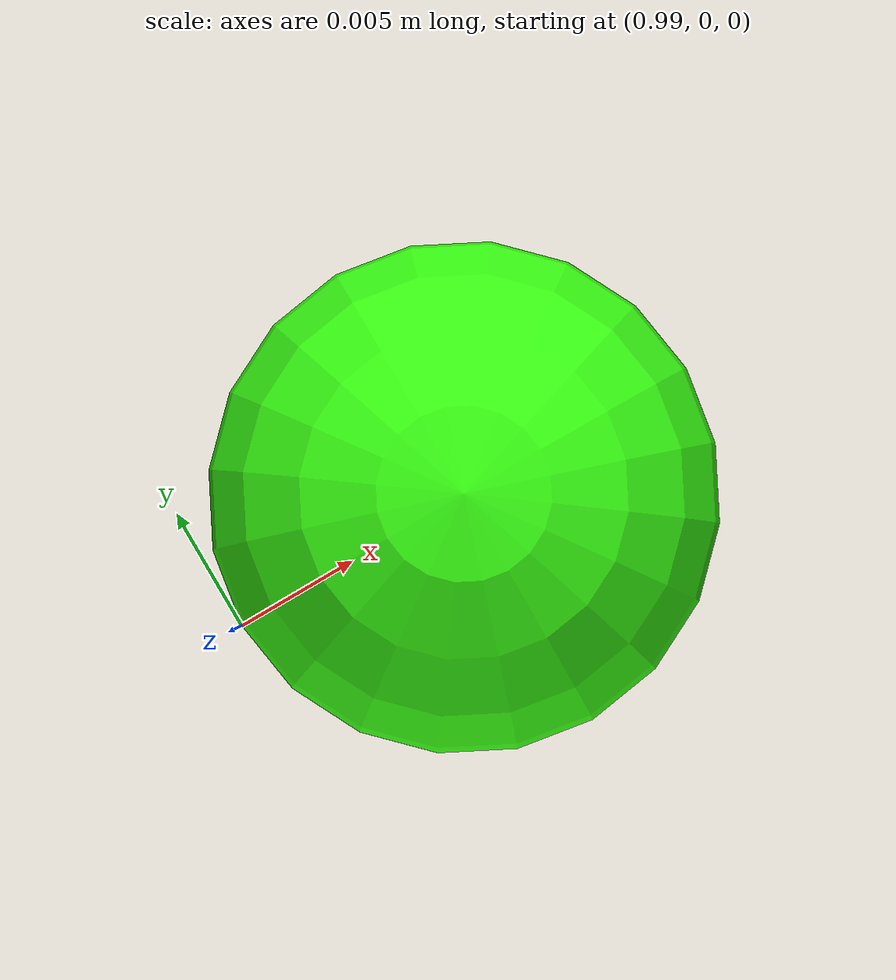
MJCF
<mujoco model="mocap markerset">
  <option timestep="0.01"/> <!-- set it based on the framerate of marker collection,i.e. 1/framerate-->

  <statistic extent="2" center="0 0 1"/>
  <asset>
        <texture type="skybox" builtin="gradient" rgb1=".4 .5 .6" rgb2="0 0 0"
            width="100" height="100"/>
        <texture builtin="flat" height="1278" mark="cross" markrgb="1 1 1" name="texgeom" random="0.01" rgb1="0.8 0.6 0.4" rgb2="0.8 0.6 0.4" type="cube" width="127"/>
        <material name="mocap_material" rgba='0.22 1. 0.07 1.'/>
        <material name='grid' reflectance='0.000000' texrepeat='1 1' texture='texplane' texuniform='true'/>
        <texture builtin='checker' height='512' name='texplane' rgb1='0.2 0.2 0.2' rgb2='0.3 0.3 0.3' type='2d' width='512'/>
  </asset>

  <worldbody>

    <light cutoff="100" diffuse="1 1 1" dir="-0 0 -1.3" directional="true" exponent="1" pos="0 0 1.3" specular=".1 .1 .1"/>

    <body name="floor" pos="0 0 0" euler="0 0 90">
      <geom name="floor" type="plane" conaffinity="1" pos="248 0 0" size="250 .8 .2" material="grid" zaxis="0 0 1"/>
    </body>

    <body mocap='true' name="m0" pos="1 0 0" >
      <geom type='sphere' size="0.01" material="mocap_material"/>
    </body>

    <body mocap='true' name="m1" pos="1 0 0" >
      <geom type='sphere' size="0.01" material="mocap_material"/>
    </body>

    <body mocap='true' name="m2" pos="1 0 0" >
      <geom type='sphere' size="0.01" material="mocap_material"/>
    </body>

    <body mocap='true' name="m3" pos="1 0 0" >
      <geom type='sphere' size="0.01" material="mocap_material"/>
    </body>

    <body mocap='true' name="m4" pos="1 0 0" >
      <geom type='sphere' size="0.01" material="mocap_material"/>
    </body>

    <body mocap='true' name="m5" pos="1 0 0" >
      <geom type='sphere' size="0.01" material="mocap_material"/>
    </body>

    <body mocap='true' name="m6" pos="1 0 0" >
      <geom type='sphere' size="0.01" material="mocap_material"/>
    </body>

    <body mocap='true' name="m7" pos="1 0 0" >
      <geom type='sphere' size="0.01" material="mocap_material"/>
    </body>

    <body mocap='true' name="m8" pos="1 0 0" >
      <geom type='sphere' size="0.01" material="mocap_material"/>
    </body>

    <body mocap='true' name="m9" pos="1 0 0" >
      <geom type='sphere' size="0.01" material="mocap_material"/>
    </body>

    <body mocap='true' name="m10" pos="1 0 0" >
      <geom type='sphere' size="0.01" material="mocap_material"/>
    </body>

    <body mocap='true' name="m11" pos="1 0 0" >
      <geom type='sphere' size="0.01" material="mocap_material"/>
    </body>

    <body mocap='true' name="m12" pos="1 0 0" >
      <geom type='sphere' size="0.01" material="mocap_material"/>
    </body>

    <body mocap='true' name="m13" pos="1 0 0" >
      <geom type='sphere' size="0.01" material="mocap_material"/>
    </body>

    <body mocap='true' name="m14" pos="1 0 0" >
      <geom type='sphere' size="0.01" material="mocap_material"/>
    </body>

    <body mocap='true' name="m15" pos="1 0 0" >
      <geom type='sphere' size="0.01" material="mocap_material"/>
    </body>

    <body mocap='true' name="m16" pos="1 0 0" >
      <geom type='sphere' size="0.01" material="mocap_material"/>
    </body>

    <body mocap='true' name="m17" pos="1 0 0" >
      <geom type='sphere' size="0.01" material="mocap_material"/>
    </body>

    <body mocap='true' name="m18" pos="1 0 0" >
      <geom type='sphere' size="0.01" material="mocap_material"/>
    </body>

    <body mocap='true' name="m19" pos="1 0 0" >
      <geom type='sphere' size="0.01" material="mocap_material"/>
    </body>

    <body mocap='true' name="m20" pos="1 0 0" >
      <geom type='sphere' size="0.01" material="mocap_material"/>
    </body>

    <body mocap='true' name="m21" pos="1 0 0" >
      <geom type='sphere' size="0.01" material="mocap_material"/>
    </body>

    <body mocap='true' name="m22" pos="1 0 0" >
      <geom type='sphere' size="0.01" material="mocap_material"/>
    </body>

    <body mocap='true' name="m23" pos="1 0 0" >
      <geom type='sphere' size="0.01" material="mocap_material"/>
    </body>

    <body mocap='true' name="m24" pos="1 0 0" >
      <geom type='sphere' size="0.01" material="mocap_material"/>
    </body>

    <body mocap='true' name="m25" pos="1 0 0" >
      <geom type='sphere' size="0.01" material="mocap_material"/>
    </body>

    <body mocap='true' name="m26" pos="1 0 0" >
      <geom type='sphere' size="0.01" material="mocap_material"/>
    </body>

    <body mocap='true' name="m27" pos="1 0 0" >
      <geom type='sphere' size="0.01" material="mocap_material"/>
    </body>

    <body mocap='true' name="m28" pos="1 0 0" >
      <geom type='sphere' size="0.01" material="mocap_material"/>
    </body>

    <body mocap='true' name="m29" pos="1 0 0" >
      <geom type='sphere' size="0.01" material="mocap_material"/>
    </body>

    <body mocap='true' name="m30" pos="1 0 0" >
      <geom type='sphere' size="0.01" material="mocap_material"/>
    </body>

    <body mocap='true' name="m31" pos="1 0 0" >
      <geom type='sphere' size="0.01" material="mocap_material"/>
    </body>

    <body mocap='true' name="m32" pos="1 0 0" >
      <geom type='sphere' size="0.01" material="mocap_material"/>
    </body>

    <body mocap='true' name="m33" pos="1 0 0" >
      <geom type='sphere' size="0.01" material="mocap_material"/>
    </body>

    <body mocap='true' name="m34" pos="1 0 0" >
      <geom type='sphere' size="0.01" material="mocap_material"/>
    </body>

    <body mocap='true' name="m35" pos="1 0 0" >
      <geom type='sphere' size="0.01" material="mocap_material"/>
    </body>

    <body mocap='true' name="m36" pos="1 0 0" >
      <geom type='sphere' size="0.01" material="mocap_material"/>
    </body>

    <body mocap='true' name="m37" pos="1 0 0" >
      <geom type='sphere' size="0.01" material="mocap_material"/>
    </body>

    <body mocap='true' name="m38" pos="1 0 0" >
      <geom type='sphere' size="0.01" material="mocap_material"/>
    </body>

    <body mocap='true' name="m39" pos="1 0 0" >
      <geom type='sphere' size="0.01" material="mocap_material"/>
    </body>

    <body mocap='true' name="m40" pos="1 0 0" >
      <geom type='sphere' size="0.01" material="mocap_material"/>
    </body>

    <body mocap='true' name="m41" pos="1 0 0" >
      <geom type='sphere' size="0.01" material="mocap_material"/>
    </body>

    <body mocap='true' name="m42" pos="1 0 0" >
      <geom type='sphere' size="0.01" material="mocap_material"/>
    </body>

    <body mocap='true' name="m43" pos="1 0 0" >
      <geom type='sphere' size="0.01" material="mocap_material"/>
    </body>

    <body mocap='true' name="m44" pos="1 0 0" >
      <geom type='sphere' size="0.01" material="mocap_material"/>
    </body>

    <body mocap='true' name="m45" pos="1 0 0" >
      <geom type='sphere' size="0.01" material="mocap_material"/>
    </body>

    <body mocap='true' name="m46" pos="1 0 0" >
      <geom type='sphere' size="0.01" material="mocap_material"/>
    </body>

    <body mocap='true' name="m47" pos="1 0 0" >
      <geom type='sphere' size="0.01" material="mocap_material"/>
    </body>

    <body mocap='true' name="m48" pos="1 0 0" >
      <geom type='sphere' size="0.01" material="mocap_material"/>
    </body>

    <body mocap='true' name="m49" pos="1 0 0" >
      <geom type='sphere' size="0.01" material="mocap_material"/>
    </body>

    <body mocap='true' name="m50" pos="1 0 0" >
      <geom type='sphere' size="0.01" material="mocap_material"/>
    </body>

    <body mocap='true' name="m51" pos="1 0 0" >
      <geom type='sphere' size="0.01" material="mocap_material"/>
    </body>

    <body mocap='true' name="m52" pos="1 0 0" >
      <geom type='sphere' size="0.01" material="mocap_material"/>
    </body>

    <body mocap='true' name="m53" pos="1 0 0" >
      <geom type='sphere' size="0.01" material="mocap_material"/>
    </body>

    <body mocap='true' name="m54" pos="1 0 0" >
      <geom type='sphere' size="0.01" material="mocap_material"/>
    </body>

    <body mocap='true' name="m55" pos="1 0 0" >
      <geom type='sphere' size="0.01" material="mocap_material"/>
    </body>

    <body mocap='true' name="m56" pos="1 0 0" >
      <geom type='sphere' size="0.01" material="mocap_material"/>
    </body>

    <body mocap='true' name="m57" pos="1 0 0" >
      <geom type='sphere' size="0.01" material="mocap_material"/>
    </body>

    <body mocap='true' name="m58" pos="1 0 0" >
      <geom type='sphere' size="0.01" material="mocap_material"/>
    </body>

    <body mocap='true' name="m59" pos="1 0 0" >
      <geom type='sphere' size="0.01" material="mocap_material"/>
    </body>

   </worldbody>

</mujoco>
